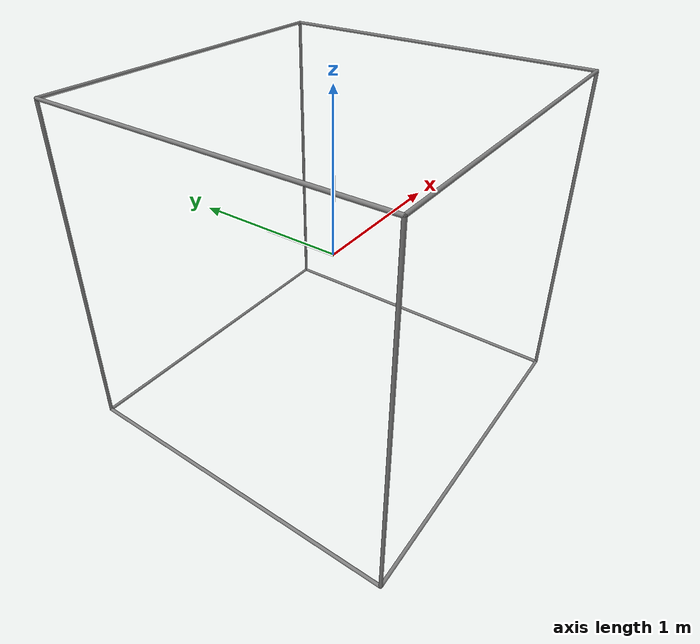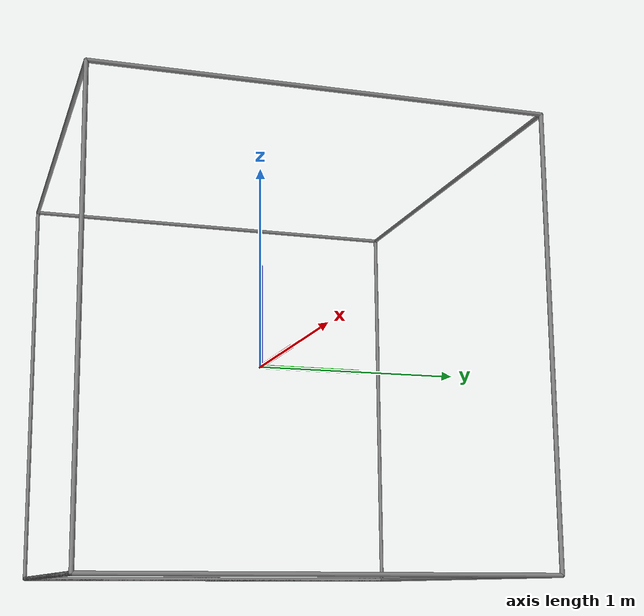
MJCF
<mujoco model="Static Capsules">
  <worldbody>
    <!-- coordinate frame -->
    <geom name="xaxis" type="capsule" size="0.01" fromto="0 0 0 .5 0 0" rgba="1 0 0 1"/>
    <geom name="yaxis" type="capsule" size="0.01" fromto="0 0 0 0 .5 0" rgba="0 1 0 1"/>
    <geom name="zaxis" type="capsule" size="0.01" fromto="0 0 0 0 0 .5" rgba="0 0 1 1"/>

    <!-- bottom face -->
    <geom type="capsule" size="0.01" fromto="-1 -1 -1 1 -1 -1"/>
    <geom type="capsule" size="0.01" fromto="1 -1 -1 1 1 -1"/>
    <geom type="capsule" size="0.01" fromto="1 1 -1 -1 1 -1"/>
    <geom type="capsule" size="0.01" fromto="-1 1 -1 -1 -1 -1"/>

    <!-- front face -->
    <geom type="capsule" size="0.01" fromto="-1 1 -1 -1 1 1"/>
    <geom type="capsule" size="0.01" fromto="-1 1 1 1 1 1"/>
    <geom type="capsule" size="0.01" fromto="1 1 1 1 1 -1"/>
    <geom type="capsule" size="0.01" fromto="1 1 -1 -1 1 -1"/>

    <!-- left face -->
    <geom type="capsule" size="0.01" fromto="-1 1 -1 -1 1 1"/>
    <geom type="capsule" size="0.01" fromto="-1 1 1 -1 -1 1"/>
    <geom type="capsule" size="0.01" fromto="-1 -1 1 -1 -1 -1"/>
    <geom type="capsule" size="0.01" fromto="-1 -1 -1 -1 1 -1"/>

    <!-- back face -->
    <geom type="capsule" size="0.01" fromto="-1 -1 -1 -1 -1 1"/>
    <geom type="capsule" size="0.01" fromto="-1 -1 1 1 -1 1"/>
    <geom type="capsule" size="0.01" fromto="1 -1 1 1 -1 -1"/>
    <geom type="capsule" size="0.01" fromto="1 -1 -1 -1 -1 -1"/>

    <!-- right face -->
    <geom type="capsule" size="0.01" fromto="1 -1 -1 1 1 -1"/>
    <geom type="capsule" size="0.01" fromto="1 1 -1 1 1 1"/>
    <geom type="capsule" size="0.01" fromto="1 1 1 1 -1 1"/>
    <geom type="capsule" size="0.01" fromto="1 -1 1 1 -1 -1"/>

    <!-- top face -->
    <geom type="capsule" size="0.01" fromto="-1 1 1 -1 -1 1"/>
    <geom type="capsule" size="0.01" fromto="-1 -1 1 1 -1 1"/>
    <geom type="capsule" size="0.01" fromto="1 -1 1 1 1 1"/>
    <geom type="capsule" size="0.01" fromto="1 1 1 -1 1 1"/>
  </worldbody>
</mujoco>
